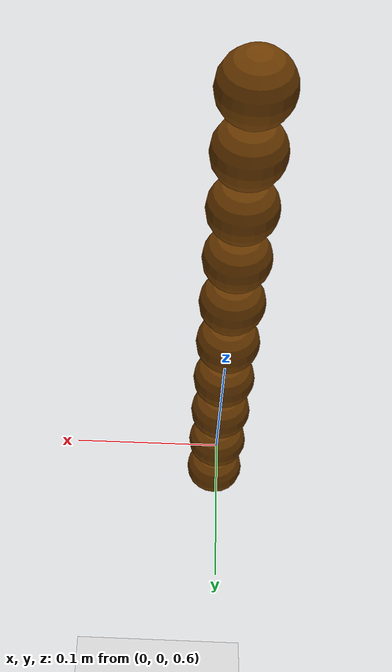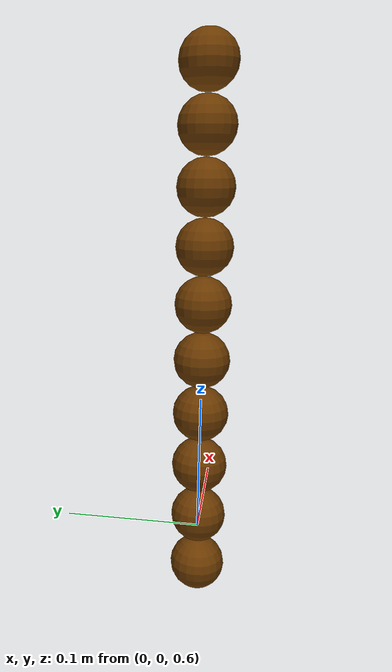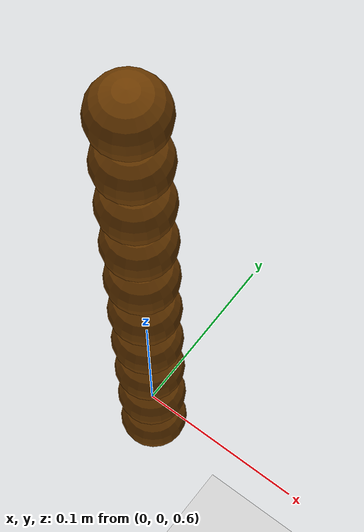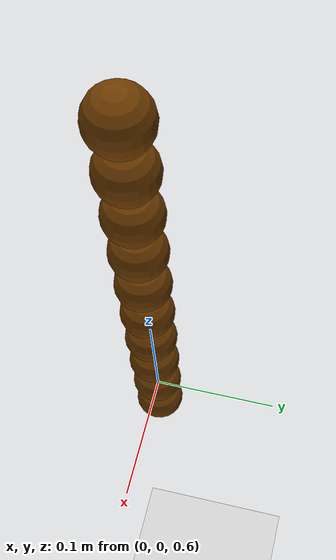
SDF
<?xml version="1.0" ?>

<sdf version="1.6">
  <world name="wind_demo">
    <plugin
      filename="gz-sim-physics-system"
      name="gz::sim::systems::Physics">
    </plugin>
    <plugin
      filename="gz-sim-user-commands-system"
      name="gz::sim::systems::UserCommands">
    </plugin>
    <plugin
      filename="gz-sim-scene-broadcaster-system"
      name="gz::sim::systems::SceneBroadcaster">
    </plugin>

    <light type="directional" name="sun">
      <cast_shadows>true</cast_shadows>
      <pose>0 0 10 0 0 0</pose>
      <diffuse>1 1 1 1</diffuse>
      <specular>0.5 0.5 0.5 1</specular>
      <attenuation>
        <range>1000</range>
        <constant>0.9</constant>
        <linear>0.01</linear>
        <quadratic>0.001</quadratic>
      </attenuation>
      <direction>-0.5 0.1 -0.9</direction>
    </light>

    <model name="ground_plane">
      <static>true</static>
      <link name="link">
        <collision name="collision">
          <geometry>
            <plane>
              <normal>0 0 1</normal>
              <size>100 100</size>
            </plane>
          </geometry>
        </collision>
        <visual name="visual">
          <geometry>
            <plane>
              <normal>0 0 1</normal>
              <size>100 100</size>
            </plane>
          </geometry>
          <material>
            <ambient>0.8 0.8 0.8 1</ambient>
            <diffuse>0.8 0.8 0.8 1</diffuse>
            <specular>0.8 0.8 0.8 1</specular>
          </material>
        </visual>
      </link>
    </model>
    <model name="wind_model">
      <pose>0 0 0 0 0 0</pose>
      <static>false</static>
      <enable_wind>true</enable_wind>
      <self_collide>true</self_collide>
      <link name="roof">
        <pose>0 0 1 0 0 0</pose>
        <collision name="collision">
          <geometry>
            <box>
              <size>1 1 0.1</size>
            </box>
          </geometry>
          <surface>
            <friction>
              <ode>
                <mu>0.1</mu>
                <mu2>0</mu2>
              </ode>
            </friction>
          </surface>
        </collision>
      </link>
      <joint name="roofJoint" type="fixed">
        <parent>world</parent>
        <child>roof</child>
      </joint>
      <link name="sphere_1">
        <pose>0 0 0.93 0 0 0</pose>
        <enable_wind>true</enable_wind>
        <collision name="collision">
          <geometry>
            <sphere>
              <radius>0.02</radius>
            </sphere>
          </geometry>
        </collision>
        <visual name="visual">
          <geometry>
            <sphere>
              <radius>0.02</radius>
            </sphere>
          </geometry>
          <material>
            <ambient>1.0 0 0 1.0</ambient>
            <diffuse>.421 0.225 0.0 1.0</diffuse>
            <specular>1.0 0 0 1.0</specular>
          </material>
        </visual>
      </link>
      <joint name="sphere_1_joint" type="ball">
        <parent>roof</parent>
        <child>sphere_1</child>
      </joint>
      <link name="sphere_2">
        <pose>0 0 0.89 0 0 0</pose>
        <enable_wind>true</enable_wind>
        <collision name="collision">
          <geometry>
            <sphere>
              <radius>0.02</radius>
            </sphere>
          </geometry>
        </collision>
        <visual name="visual">
          <geometry>
            <sphere>
              <radius>0.02</radius>
            </sphere>
          </geometry>
          <material>
            <ambient>1.0 0 0 1.0</ambient>
            <diffuse>.421 0.225 0.0 1.0</diffuse>
            <specular>1.0 0 0 1.0</specular>
          </material>
        </visual>
      </link>
      <joint name="sphere_2_joint" type="ball">
        <parent>sphere_1</parent>
        <child>sphere_2</child>
      </joint>
      <link name="sphere_3">
        <pose>0 0 0.85 0 0 0</pose>
        <enable_wind>true</enable_wind>
        <collision name="collision">
          <geometry>
            <sphere>
              <radius>0.02</radius>
            </sphere>
          </geometry>
        </collision>
        <visual name="visual">
          <geometry>
            <sphere>
              <radius>0.02</radius>
            </sphere>
          </geometry>
          <material>
            <ambient>1.0 0 0 1.0</ambient>
            <diffuse>.421 0.225 0.0 1.0</diffuse>
            <specular>1.0 0 0 1.0</specular>
          </material>
        </visual>
      </link>
      <joint name="sphere_3_joint" type="ball">
        <parent>sphere_2</parent>
        <child>sphere_3</child>
      </joint>
      <link name="sphere_4">
        <pose>0 0 0.81 0 0 0</pose>
        <enable_wind>true</enable_wind>
        <collision name="collision">
          <geometry>
            <sphere>
              <radius>0.02</radius>
            </sphere>
          </geometry>
        </collision>
        <visual name="visual">
          <geometry>
            <sphere>
              <radius>0.02</radius>
            </sphere>
          </geometry>
          <material>
            <ambient>1.0 0 0 1.0</ambient>
            <diffuse>.421 0.225 0.0 1.0</diffuse>
            <specular>1.0 0 0 1.0</specular>
          </material>
        </visual>
      </link>
      <joint name="sphere_4_joint" type="ball">
        <parent>sphere_3</parent>
        <child>sphere_4</child>
      </joint>
      <link name="sphere_5">
        <pose>0 0 0.77 0 0 0</pose>
        <enable_wind>true</enable_wind>
        <collision name="collision">
          <geometry>
            <sphere>
              <radius>0.02</radius>
            </sphere>
          </geometry>
        </collision>
        <visual name="visual">
          <geometry>
            <sphere>
              <radius>0.02</radius>
            </sphere>
          </geometry>
          <material>
            <ambient>1.0 0 0 1.0</ambient>
            <diffuse>.421 0.225 0.0 1.0</diffuse>
            <specular>1.0 0 0 1.0</specular>
          </material>
        </visual>
      </link>
      <joint name="sphere_5_joint" type="ball">
        <parent>sphere_4</parent>
        <child>sphere_5</child>
      </joint>
      <link name="sphere_6">
        <pose>0 0 0.73 0 0 0</pose>
        <enable_wind>true</enable_wind>
        <collision name="collision">
          <geometry>
            <sphere>
              <radius>0.02</radius>
            </sphere>
          </geometry>
        </collision>
        <visual name="visual">
          <geometry>
            <sphere>
              <radius>0.02</radius>
            </sphere>
          </geometry>
          <material>
            <ambient>1.0 0 0 1.0</ambient>
            <diffuse>.421 0.225 0.0 1.0</diffuse>
            <specular>1.0 0 0 1.0</specular>
          </material>
        </visual>
      </link>
      <joint name="sphere_6_joint" type="ball">
        <parent>sphere_5</parent>
        <child>sphere_6</child>
      </joint>
      <link name="sphere_7">
        <pose>0 0 0.69 0 0 0</pose>
        <enable_wind>true</enable_wind>
        <collision name="collision">
          <geometry>
            <sphere>
              <radius>0.02</radius>
            </sphere>
          </geometry>
        </collision>
        <visual name="visual">
          <geometry>
            <sphere>
              <radius>0.02</radius>
            </sphere>
          </geometry>
          <material>
            <ambient>1.0 0 0 1.0</ambient>
            <diffuse>.421 0.225 0.0 1.0</diffuse>
            <specular>1.0 0 0 1.0</specular>
          </material>
        </visual>
      </link>
      <joint name="sphere_7_joint" type="ball">
        <parent>sphere_6</parent>
        <child>sphere_7</child>
      </joint>
      <link name="sphere_8">
        <pose>0 0 0.65 0 0 0</pose>
        <enable_wind>true</enable_wind>
        <collision name="collision">
          <geometry>
            <sphere>
              <radius>0.02</radius>
            </sphere>
          </geometry>
        </collision>
        <visual name="visual">
          <geometry>
            <sphere>
              <radius>0.02</radius>
            </sphere>
          </geometry>
          <material>
            <ambient>1.0 0 0 1.0</ambient>
            <diffuse>.421 0.225 0.0 1.0</diffuse>
            <specular>1.0 0 0 1.0</specular>
          </material>
        </visual>
      </link>
      <joint name="sphere_8_joint" type="ball">
        <parent>sphere_7</parent>
        <child>sphere_8</child>
      </joint>
      <link name="sphere_9">
        <pose>0 0 0.61 0 0 0</pose>
        <enable_wind>true</enable_wind>
        <collision name="collision">
          <geometry>
            <sphere>
              <radius>0.02</radius>
            </sphere>
          </geometry>
        </collision>
        <visual name="visual">
          <geometry>
            <sphere>
              <radius>0.02</radius>
            </sphere>
          </geometry>
          <material>
            <ambient>1.0 0 0 1.0</ambient>
            <diffuse>.421 0.225 0.0 1.0</diffuse>
            <specular>1.0 0 0 1.0</specular>
          </material>
        </visual>
      </link>
      <joint name="sphere_9_joint" type="ball">
        <parent>sphere_8</parent>
        <child>sphere_9</child>
      </joint>
      <link name="sphere_10">
        <pose>0 0 0.57 0 0 0</pose>
        <enable_wind>true</enable_wind>
        <collision name="collision">
          <geometry>
            <sphere>
              <radius>0.02</radius>
            </sphere>
          </geometry>
        </collision>
        <visual name="visual">
          <geometry>
            <sphere>
              <radius>0.02</radius>
            </sphere>
          </geometry>
          <material>
            <ambient>1.0 0 0 1.0</ambient>
            <diffuse>.421 0.225 0.0 1.0</diffuse>
            <specular>1.0 0 0 1.0</specular>
          </material>
        </visual>
      </link>
      <joint name="sphere_10_joint" type="ball">
        <parent>sphere_9</parent>
        <child>sphere_10</child>
      </joint>
    </model>

    <wind>
      <linear_velocity>0 10 0</linear_velocity>
    </wind>

    <!-- Load the plugin for the wind -->
    <plugin
      filename="gz-sim-wind-effects-system"
      name="gz::sim::systems::WindEffects">
      <force_approximation_scaling_factor>1</force_approximation_scaling_factor>
      <horizontal>
        <magnitude>
          <time_for_rise>10</time_for_rise>
          <sin>
            <amplitude_percent>0.05</amplitude_percent>
            <period>60</period>
          </sin>
          <noise type="gaussian">
           <mean>0</mean>
           <stddev>0.0002</stddev>
          </noise>
        </magnitude>
        <direction>
          <time_for_rise>30</time_for_rise>
          <sin>
            <amplitude>5</amplitude>
            <period>20</period>
          </sin>
          <noise type="gaussian">
           <mean>0</mean>
           <stddev>0.03</stddev>
          </noise>
        </direction>
      </horizontal>
      <vertical>
        <noise type="gaussian">
         <mean>0</mean>
         <stddev>0.03</stddev>
        </noise>
      </vertical>
    </plugin>

      <plugin
      filename="gz-sim-apply-link-wrench-system"
      name="gz::sim::systems::ApplyLinkWrench">
    </plugin>

</world>
</sdf>
